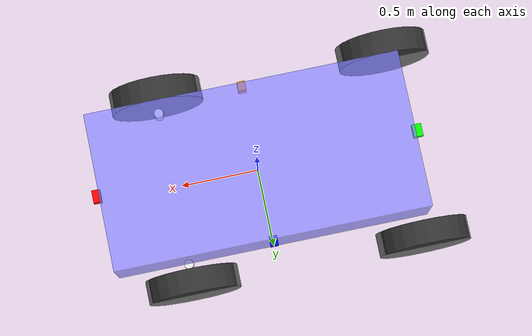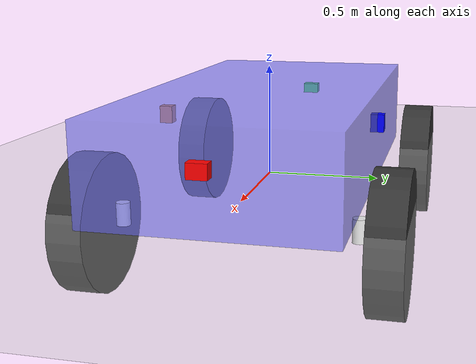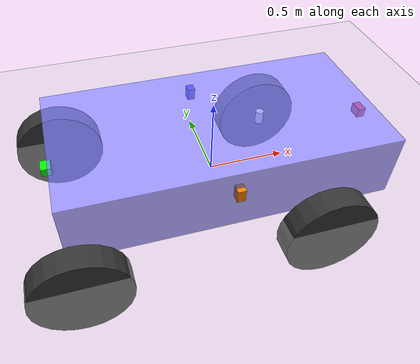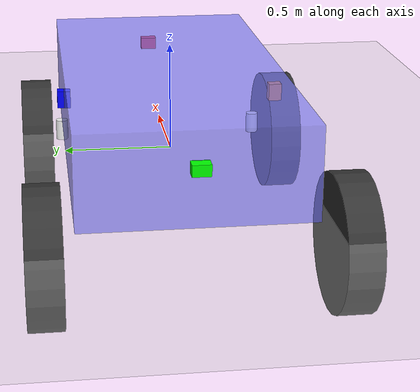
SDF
<?xml version="1.0"?>
<sdf version="1.8">
  <world name="my_world">
    <plugin
      filename="gz-sim-physics-system"
      name="gz::sim::systems::Physics">
    </plugin>
    <plugin
      filename="gz-sim-sensors-system"
      name="gz::sim::systems::Sensors">
      <render_engine>ogre2</render_engine>
    </plugin>
    <plugin
      filename="gz-sim-scene-broadcaster-system"
      name="gz::sim::systems::SceneBroadcaster">
    </plugin>
    <plugin
      filename="gz-sim-user-commands-system"
      name="gz::sim::systems::UserCommands">
    </plugin>

    <plugin filename="gz-sim-imu-system"
        name="gz::sim::systems::Imu">
    </plugin>

    <light name="sun1" type="directional">
      <cast_shadows>true</cast_shadows>
      <pose>0 0 10 0 0 0</pose>
      <diffuse>0.8 0.8 0.8 1</diffuse>
      <specular>0.2 0.2 0.2 1</specular>
      <attenuation>
        <range>1000</range>
        <constant>0.9</constant>
        <linear>0.01</linear>
        <quadratic>0.001</quadratic>
      </attenuation>
      <direction>-0.5 0.1 -0.9</direction>
    </light>

    <model name="ground_plane">
      <static>true</static>
      <link name="link">
        <collision name="collision">
          <geometry>
            <plane>
              <normal>0 0 1</normal>
              <size>100 100</size>
            </plane>
          </geometry>
        </collision>
        <visual name="visual">
          <geometry>
            <plane>
              <normal>0 0 1</normal>
              <size>100 100</size>
            </plane>
          </geometry>
          <material>
            <ambient>0.8 0.8 0.8 1</ambient>
            <diffuse>0.8 0.8 0.8 1</diffuse>
            <specular>0.8 0.8 0.8 1</specular>
          </material>
        </visual>
      </link>
    </model>

    <include>
      <name>warehouse</name>
      <pose>0 0 -0.09 0 0 0</pose>
      <uri>model://mbpose-description/worlds/warehouse/model.sdf</uri>
    </include>

  </world>
</sdf>

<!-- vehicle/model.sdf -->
<sdf version="1.8">

  <model name='vehicle'>
    <!-- Model properties -->
    <self_collide>false</self_collide>
    <static>false</static>

    <link name='base_link'>
      <!-- Gazebo frame identifier for ROS integration -->
      <gz_frame_id>vehicle/base_link</gz_frame_id>
      <!-- Position offset: slightly forward and elevated to center of mass -->
      <pose>0.0 0.0 0.25 0.0 0.0 0.0</pose>

      <!-- Inertial properties: mass and moment of inertia tensor -->
      <inertial>
        <mass>1.14395</mass>
        <inertia>
          <ixx>0.126164</ixx>
          <ixy>0</ixy>
          <ixz>0</ixz>
          <iyy>0.416519</iyy>
          <iyz>0</iyz>
          <izz>0.481014</izz>
        </inertia>
      </inertial>

      <!-- Visual representation: blue semi-transparent box -->
      <visual name='base_link_visual'>
        <geometry>
          <box>
            <size>2.0 1.0 0.5</size>
          </box>
        </geometry>
        <material>
          <ambient>0.5 0.5 1.0 0.7</ambient>
          <diffuse>0.5 0.5 1.0 0.7</diffuse>
          <specular>0.0 0.0 1.0 1</specular>
        </material>
      </visual>

      <!-- Collision geometry: matches visual for physics simulation -->
      <collision name='base_link_collision'>
        <geometry>
          <box>
            <size>2.0 1.0 0.5</size>
          </box>
        </geometry>
      </collision>
    </link>

    <!--
      Front Camera Link
      =================
      Front-facing camera sensor for visual perception.
      Positioned at the front center of the vehicle.
    -->
    <link name='front_camera_link'>
      <!-- Gazebo frame identifier for ROS integration -->
      <gz_frame_id>vehicle/front_camera_link</gz_frame_id>
      <!-- Position: front center of vehicle, elevated for good field of view -->
      <!-- Rear face of camera box aligned with front face of chassis -->
      <pose>1.025 0 0.35 0 0 0</pose>

      <!-- Inertial properties: lightweight camera -->
      <inertial>
        <mass>0.1</mass>
        <inertia>
          <ixx>0.0001</ixx>
          <ixy>0</ixy>
          <ixz>0</ixz>
          <iyy>0.0001</iyy>
          <iyz>0</iyz>
          <izz>0.0001</izz>
        </inertia>
      </inertial>

      <!-- Visual representation: small box representing camera body -->
      <visual name='front_camera_link_visual'>
        <geometry>
          <box>
            <size>0.05 0.08 0.06</size>
          </box>
        </geometry>
        <material>
          <ambient>1.0 0.0 0.0 1</ambient>
          <diffuse>1.0 0.0 0.0 1</diffuse>
          <specular>0.5 0.0 0.0 1</specular>
        </material>
      </visual>

      <!-- Collision geometry: matches visual -->
      <collision name='front_camera_link_collision'>
        <geometry>
          <box>
            <size>0.05 0.08 0.06</size>
          </box>
        </geometry>
      </collision>

      <!-- Front camera sensor -->
      <sensor name='front_camera' type='camera'>
        <camera>
          <horizontal_fov>1.047</horizontal_fov>
          <image>
            <width>640</width>
            <height>480</height>
          </image>
          <clip>
            <near>0.1</near>
            <far>100</far>
          </clip>
        </camera>
        <always_on>true</always_on>
        <update_rate>30</update_rate>
        <visualize>false</visualize>
        <topic>front_camera/image_raw</topic>
      </sensor>
    </link>

    <!--
      Front Camera Joint
      ==================
      Fixed joint connecting the front camera to the base link.
      This ensures the camera moves with the vehicle.
    -->
    <joint name='front_camera_joint' type='fixed'>
      <parent>base_link</parent>
      <child>front_camera_link</child>
    </joint>

    <link name='rear_camera_link'>
      <gz_frame_id>vehicle/rear_camera_link</gz_frame_id>
      <!-- Center at x = -1.03571 so rear face (link +z at +0.03) is at chassis rear x = -1.00571; camera is exterior -->
      <!-- Pitch -90° (-1.5708) so camera -z aligns with base -x (looks backward) -->
      <pose>-1.025 0 0.35 0 -1.5708 0</pose>
      <inertial>
        <mass>0.1</mass>
        <inertia>
          <ixx>0.0001</ixx>
          <ixy>0</ixy>
          <ixz>0</ixz>
          <iyy>0.0001</iyy>
          <iyz>0</iyz>
          <izz>0.0001</izz>
        </inertia>
      </inertial>
      <visual name='rear_camera_link_visual'>
        <geometry>
          <box>
            <size>0.05 0.08 0.06</size>
          </box>
        </geometry>
        <material>
          <ambient>0.0 1.0 0.0 1</ambient>
          <diffuse>0.0 1.0 0.0 1</diffuse>
          <specular>0.0 0.5 0.0 1</specular>
        </material>
      </visual>
      <collision name='rear_camera_link_collision'>
        <geometry>
          <box>
            <size>0.05 0.08 0.06</size>
          </box>
        </geometry>
      </collision>
      <sensor name='rear_camera' type='camera'>
        <camera>
          <horizontal_fov>1.047</horizontal_fov>
          <image>
            <width>640</width>
            <height>480</height>
          </image>
          <clip>
            <near>0.1</near>
            <far>100</far>
          </clip>
        </camera>
        <always_on>true</always_on>
        <update_rate>30</update_rate>
        <visualize>false</visualize>
        <topic>rear_camera/image_raw</topic>
      </sensor>
    </link>
    <joint name='rear_camera_joint' type='fixed'>
      <parent>base_link</parent>
      <child>rear_camera_link</child>
    </joint>

    <link name='left_camera_link'>
      <gz_frame_id>vehicle/left_camera_link</gz_frame_id>
      <!-- Center at y = 0.53 so rear face (link +z at +0.03) is at chassis left face y = 0.5 -->
      <!-- Roll -90° (-1.5708) so camera -z aligns with base +y (looks left) -->
      <pose>0 0.5 0.35 -1.5708 0 0</pose>
      <inertial>
        <mass>0.1</mass>
        <inertia>
          <ixx>0.0001</ixx>
          <ixy>0</ixy>
          <ixz>0</ixz>
          <iyy>0.0001</iyy>
          <iyz>0</iyz>
          <izz>0.0001</izz>
        </inertia>
      </inertial>
      <visual name='left_camera_link_visual'>
        <geometry>
          <box>
            <size>0.05 0.08 0.06</size>
          </box>
        </geometry>
        <material>
          <ambient>0.0 0.0 1.0 1</ambient>
          <diffuse>0.0 0.0 1.0 1</diffuse>
          <specular>0.0 0.0 0.5 1</specular>
        </material>
      </visual>
      <collision name='left_camera_link_collision'>
        <geometry>
          <box>
            <size>0.05 0.08 0.06</size>
          </box>
        </geometry>
      </collision>
      <sensor name='left_camera' type='camera'>
        <camera>
          <horizontal_fov>1.047</horizontal_fov>
          <image>
            <width>640</width>
            <height>480</height>
          </image>
          <clip>
            <near>0.1</near>
            <far>100</far>
          </clip>
        </camera>
        <always_on>true</always_on>
        <update_rate>30</update_rate>
        <visualize>false</visualize>
        <topic>left_camera/image_raw</topic>
      </sensor>
    </link>
    <joint name='left_camera_joint' type='fixed'>
      <parent>base_link</parent>
      <child>left_camera_link</child>
    </joint>

    <link name='right_camera_link'>
      <gz_frame_id>vehicle/right_camera_link</gz_frame_id>
      <!-- Center at y = -0.53 so rear face (link +z at +0.03) is at chassis right face y = -0.5 -->
      <!-- Roll 90° (1.5708) so camera -z (optical axis) aligns with base -y (looks right) -->
      <pose>0 -0.5 0.35 1.5708 0 0</pose>
      <inertial>
        <mass>0.1</mass>
        <inertia>
          <ixx>0.0001</ixx>
          <ixy>0</ixy>
          <ixz>0</ixz>
          <iyy>0.0001</iyy>
          <iyz>0</iyz>
          <izz>0.0001</izz>
        </inertia>
      </inertial>
      <visual name='right_camera_link_visual'>
        <geometry>
          <box>
            <size>0.05 0.08 0.06</size>
          </box>
        </geometry>
        <material>
          <ambient>1.0 0.5 0.0 1</ambient>
          <diffuse>1.0 0.5 0.0 1</diffuse>
          <specular>0.5 0.25 0.0 1</specular>
        </material>
      </visual>
      <collision name='right_camera_link_collision'>
        <geometry>
          <box>
            <size>0.05 0.08 0.06</size>
          </box>
        </geometry>
      </collision>
      <sensor name='right_camera' type='camera'>
        <camera>
          <horizontal_fov>1.047</horizontal_fov>
          <image>
            <width>640</width>
            <height>480</height>
          </image>
          <clip>
            <near>0.1</near>
            <far>100</far>
          </clip>
        </camera>
        <always_on>true</always_on>
        <update_rate>30</update_rate>
        <visualize>false</visualize>
        <topic>right_camera/image_raw</topic>
      </sensor>
    </link>
    <joint name='right_camera_joint' type='fixed'>
      <parent>base_link</parent>
      <child>right_camera_link</child>
    </joint>

    <link name='front_left_wheel_link'>
      <!-- Position: front-left, rotated 90 degrees to align wheel horizontally -->
      <pose>0.554283 0.625029 -0.025 -1.5707 0 0</pose>

      <!-- Inertial properties: wheel mass and inertia -->
      <inertial>
        <mass>2</mass>
        <inertia>
          <ixx>0.145833</ixx>
          <ixy>0</ixy>
          <ixz>0</ixz>
          <iyy>0.145833</iyy>
          <iyz>0</iyz>
          <izz>0.125</izz>
        </inertia>
      </inertial>

      <!-- Visual: dark gray cylinder representing the wheel -->
      <visual name='front_left_wheel_visual'>
        <geometry>
          <cylinder>
            <length>0.15</length>
            <radius>0.3</radius>
          </cylinder>
        </geometry>
        <material>
          <ambient>0.2 0.2 0.2 1</ambient>
          <diffuse>0.2 0.2 0.2 1</diffuse>
          <specular>0.2 0.2 0.2 1</specular>
        </material>
      </visual>

      <!-- Collision: matches visual with friction properties for realistic wheel-ground interaction -->
      <collision name='front_left_wheel_collision'>
        <geometry>
          <cylinder>
            <length>0.15</length>
            <radius>0.3</radius>
          </cylinder>
        </geometry>
        <surface>
          <friction>
            <!-- ODE physics engine friction parameters -->
            <ode>
              <mu>0.5</mu>
              <mu2>1.0</mu2>
              <fdir1>0 0 1</fdir1>
            </ode>
            <!-- Bullet physics engine friction parameters -->
            <bullet>
              <friction>0.5</friction>
              <friction2>1</friction2>
              <rolling_friction>0.1</rolling_friction>
            </bullet>
          </friction>
        </surface>
      </collision>
    </link>

    <link name="front_left_wheel_steering_link">
      <!-- Position: front-left, slightly elevated from wheel -->
      <pose>0.554283 0.5 0.02 0 0 0</pose>

      <!-- Inertial properties: lightweight steering mechanism -->
      <inertial>
        <mass>0.5</mass>
        <inertia>
          <ixx>0.0153</ixx>
          <iyy>0.025</iyy>
          <izz>0.0153</izz>
        </inertia>
      </inertial>

      <!-- Visual: small white cylinder representing the steering pivot -->
      <visual name="front_left_wheel_steering_link_visual">
        <pose>0 0 0 0 0 0</pose>
        <geometry>
          <cylinder>
            <length>0.1</length>
            <radius>0.03</radius>
          </cylinder>
        </geometry>
        <material>
          <ambient>1 1 1</ambient>
          <diffuse>1 1 1</diffuse>
        </material>
      </visual>
    </link>

    <joint name='front_left_wheel_joint' type='revolute'>
      <parent>front_left_wheel_steering_link</parent>
      <child>front_left_wheel_link</child>
      <axis>
        <xyz>0 0 1</xyz>
        <!-- Unlimited rotation for continuous wheel spinning -->
        <limit>
          <lower>-1.79769e+308</lower>
          <upper>1.79769e+308</upper>
        </limit>
        <use_parent_model_frame>1</use_parent_model_frame>
      </axis>
    </joint>

    <joint name="front_left_wheel_steering_joint" type="revolute">
      <parent>base_link</parent>
      <child>front_left_wheel_steering_link</child>
      <axis>
        <xyz>0 0 1</xyz>
        <limit>
          <lower>-0.6</lower>
          <upper>+0.6</upper>
          <velocity>1.0</velocity>
          <effort>25</effort>
        </limit>
        <use_parent_model_frame>1</use_parent_model_frame>
      </axis>
    </joint>

    <link name='front_right_wheel_link'>
      <!-- Position: front-right, rotated 90 degrees to align wheel horizontally -->
      <pose>0.554283 -0.625029 -0.025 -1.5707 0 0</pose>

      <!-- Inertial properties: wheel mass and inertia -->
      <inertial>
        <mass>2</mass>
        <inertia>
          <ixx>0.145833</ixx>
          <ixy>0</ixy>
          <ixz>0</ixz>
          <iyy>0.145833</iyy>
          <iyz>0</iyz>
          <izz>0.125</izz>
        </inertia>
      </inertial>

      <!-- Visual: dark gray cylinder representing the wheel -->
      <visual name='front_right_wheel_visual'>
        <geometry>
          <cylinder>
            <length>0.15</length>
            <radius>0.3</radius>
          </cylinder>
        </geometry>
        <material>
          <ambient>0.2 0.2 0.2 1</ambient>
          <diffuse>0.2 0.2 0.2 1</diffuse>
          <specular>0.2 0.2 0.2 1</specular>
        </material>
      </visual>

      <!-- Collision: matches visual with friction properties -->
      <collision name='front_right_wheel_collision'>
        <geometry>
          <cylinder>
            <length>0.15</length>
            <radius>0.3</radius>
          </cylinder>
        </geometry>
        <surface>
          <friction>
            <ode>
              <mu>0.5</mu>
              <mu2>1.0</mu2>
              <fdir1>0 0 1</fdir1>
            </ode>
            <bullet>
              <friction>0.5</friction>
              <friction2>1</friction2>
              <rolling_friction>0.1</rolling_friction>
            </bullet>
          </friction>
        </surface>
      </collision>
    </link>

    <link name="front_right_wheel_steering_link">
      <!-- Position: front-right, slightly elevated from wheel -->
      <pose>0.554283 -0.5 0.02 0 0 0</pose>

      <!-- Inertial properties: lightweight steering mechanism -->
      <inertial>
        <mass>0.5</mass>
        <inertia>
          <ixx>0.0153</ixx>
          <iyy>0.025</iyy>
          <izz>0.0153</izz>
        </inertia>
      </inertial>

      <!-- Visual: small white cylinder representing the steering pivot -->
      <visual name="front_right_wheel_steering_link_visual">
        <pose>0 0 0 0 0 0</pose>
        <geometry>
          <cylinder>
            <length>0.1</length>
            <radius>0.03</radius>
          </cylinder>
        </geometry>
        <material>
          <ambient>1 1 1</ambient>
          <diffuse>1 1 1</diffuse>
        </material>
      </visual>
    </link>

    <joint name='front_right_wheel_joint' type='revolute'>
      <parent>front_right_wheel_steering_link</parent>
      <child>front_right_wheel_link</child>
      <!-- Optional pose relative to steering joint (commented out) -->
      <axis>
        <xyz>0 0 1</xyz>
        <!-- Unlimited rotation for continuous wheel spinning -->
        <limit>
          <lower>-1.79769e+308</lower>
          <upper>1.79769e+308</upper>
        </limit>
        <use_parent_model_frame>1</use_parent_model_frame>
      </axis>
    </joint>

    <joint name="front_right_wheel_steering_joint" type="revolute">
      <parent>base_link</parent>
      <child>front_right_wheel_steering_link</child>
      <axis>
        <xyz>0 0 1</xyz>
        <limit>
          <lower>-0.6</lower>
          <upper>+0.6</upper>
          <velocity>1.0</velocity>
          <effort>25</effort>
        </limit>
        <use_parent_model_frame>1</use_parent_model_frame>
      </axis>
    </joint>

    <joint name='rear_right_wheel_joint' type='revolute'>
      <parent>base_link</parent>
      <child>rear_right_wheel_link</child>
      <axis>
        <xyz>0 0 1</xyz>
        <!-- Unlimited rotation for continuous wheel spinning -->
        <limit>
          <lower>-1.79769e+308</lower>
          <upper>1.79769e+308</upper>
        </limit>
        <use_parent_model_frame>1</use_parent_model_frame>
      </axis>
    </joint>

    <joint name='rear_left_wheel_joint' type='revolute'>
      <parent>base_link</parent>
      <child>rear_left_wheel_link</child>
      <axis>
        <xyz>0 0 1</xyz>
        <!-- Unlimited rotation for continuous wheel spinning -->
        <limit>
          <lower>-1.79769e+308</lower>
          <upper>1.79769e+308</upper>
        </limit>
        <use_parent_model_frame>1</use_parent_model_frame>
      </axis>
    </joint>

    <link name='rear_right_wheel_link'>
      <!-- Position: rear-right, rotated 90 degrees to align wheel horizontally -->
      <pose>-0.957138 -0.625029 -0.025 -1.5707 0 0</pose>

      <!-- Inertial properties: wheel mass and inertia -->
      <inertial>
        <mass>2</mass>
        <inertia>
          <ixx>0.145833</ixx>
          <ixy>0</ixy>
          <ixz>0</ixz>
          <iyy>0.145833</iyy>
          <iyz>0</iyz>
          <izz>0.125</izz>
        </inertia>
      </inertial>

      <!-- Visual: dark gray cylinder representing the wheel -->
      <visual name='rear_right_wheel_visual'>
        <geometry>
          <cylinder>
            <length>0.15</length>
            <radius>0.3</radius>
          </cylinder>
        </geometry>
        <material>
          <ambient>0.2 0.2 0.2 1</ambient>
          <diffuse>0.2 0.2 0.2 1</diffuse>
          <specular>0.2 0.2 0.2 1</specular>
        </material>
      </visual>

      <!-- Collision: matches visual with friction properties -->
      <!-- Note: Higher rolling friction (0.5) compared to front wheels (0.1) -->
      <collision name='rear_right_wheel_collision'>
        <geometry>
          <cylinder>
            <length>0.15</length>
            <radius>0.3</radius>
          </cylinder>
        </geometry>
        <surface>
          <friction>
            <ode>
              <mu>0.5</mu>
              <mu2>1.0</mu2>
              <fdir1>0 0 1</fdir1>
            </ode>
            <bullet>
              <friction>0.5</friction>
              <friction2>1</friction2>
              <rolling_friction>0.5</rolling_friction>
            </bullet>
          </friction>
        </surface>
      </collision>
    </link>

    <link name='rear_left_wheel_link'>
      <!-- Position: rear-left, rotated 90 degrees to align wheel horizontally -->
      <pose>-0.957138 0.625029 -0.025 -1.5707 0 0</pose>

      <!-- Inertial properties: wheel mass and inertia -->
      <inertial>
        <mass>2</mass>
        <inertia>
          <ixx>0.145833</ixx>
          <ixy>0</ixy>
          <ixz>0</ixz>
          <iyy>0.145833</iyy>
          <iyz>0</iyz>
          <izz>0.125</izz>
        </inertia>
      </inertial>

      <!-- Visual: dark gray cylinder representing the wheel -->
      <visual name='rear_left_wheel_visual'>
        <geometry>
          <cylinder>
            <length>0.15</length>
            <radius>0.3</radius>
          </cylinder>
        </geometry>
        <material>
          <ambient>0.2 0.2 0.2 1</ambient>
          <diffuse>0.2 0.2 0.2 1</diffuse>
          <specular>0.2 0.2 0.2 1</specular>
        </material>
      </visual>

      <!-- Collision: matches visual with friction properties -->
      <!-- Note: Higher rolling friction (0.5) compared to front wheels (0.1) -->
      <collision name='rear_left_wheel_collision'>
        <geometry>
          <cylinder>
            <length>0.15</length>
            <radius>0.3</radius>
          </cylinder>
        </geometry>
        <surface>
          <friction>
            <ode>
              <mu>0.5</mu>
              <mu2>1.0</mu2>
              <fdir1>0 0 1</fdir1>
            </ode>
            <bullet>
              <friction>0.5</friction>
              <friction2>1</friction2>
              <rolling_friction>0.5</rolling_friction>
            </bullet>
          </friction>
        </surface>
      </collision>
    </link>

    <plugin
      filename="gz-sim-ackermann-steering-system"
      name="gz::sim::systems::AckermannSteering">
      <left_joint>front_left_wheel_joint</left_joint>
      <left_joint>rear_left_wheel_joint</left_joint>
      <right_joint>front_right_wheel_joint</right_joint>
      <right_joint>rear_right_wheel_joint</right_joint>
      <left_steering_joint>front_left_wheel_steering_joint</left_steering_joint>
      <right_steering_joint>front_right_wheel_steering_joint</right_steering_joint>
      <kingpin_width>1.0</kingpin_width>
      <steering_limit>0.5</steering_limit>
      <wheel_base>1.0</wheel_base>
      <wheel_separation>1.25</wheel_separation>
      <wheel_radius>0.3</wheel_radius>
      <min_velocity>-1</min_velocity>
      <max_velocity>1</max_velocity>
      <min_acceleration>-3</min_acceleration>
      <max_acceleration>3</max_acceleration>
      <topic>/vehicle/cmd_vel</topic>
    </plugin>

    <plugin
      filename="gz-sim-pose-publisher-system"
      name="gz::sim::systems::PosePublisher">
      <publish_link_pose>true</publish_link_pose>
      <publish_sensor_pose>true</publish_sensor_pose>
      <publish_model_pose>false</publish_model_pose>
      <use_pose_vector_msg>true</use_pose_vector_msg>
    </plugin>

    <plugin
      filename="gz-sim-odometry-publisher-system"
      name="gz::sim::systems::OdometryPublisher">
      <odom_frame>odom</odom_frame>
      <robot_base_frame>vehicle</robot_base_frame>
      <odom_topic>/vehicle/odom</odom_topic>
      <dimensions>3</dimensions>
    </plugin>

    <plugin
      filename="gz-sim-joint-state-publisher-system"
      name="gz::sim::systems::JointStatePublisher">
    </plugin>

  </model>

</sdf>
